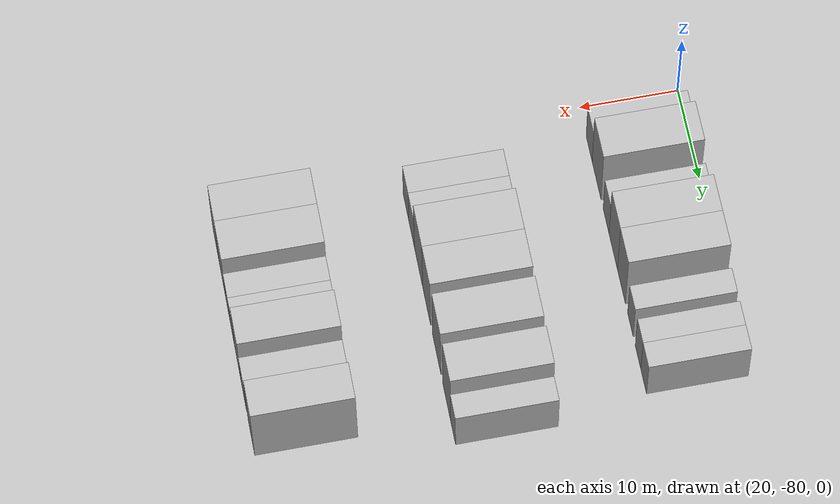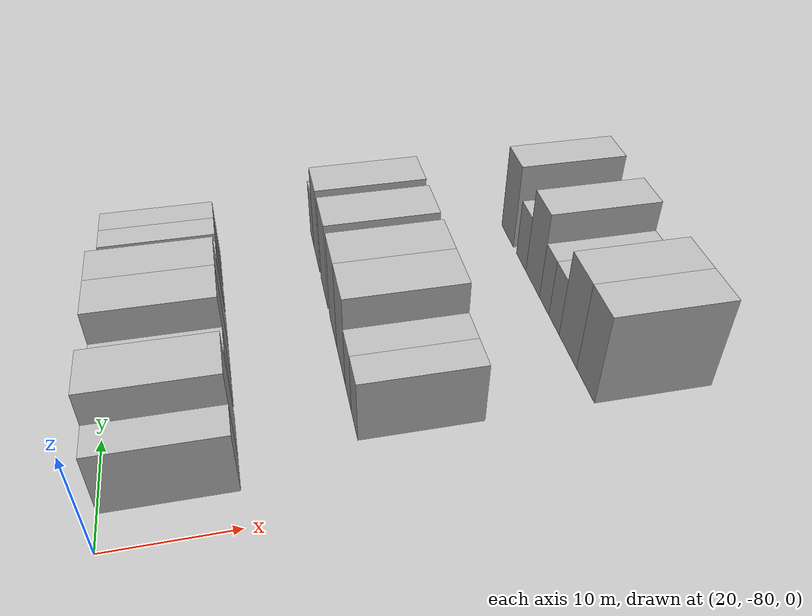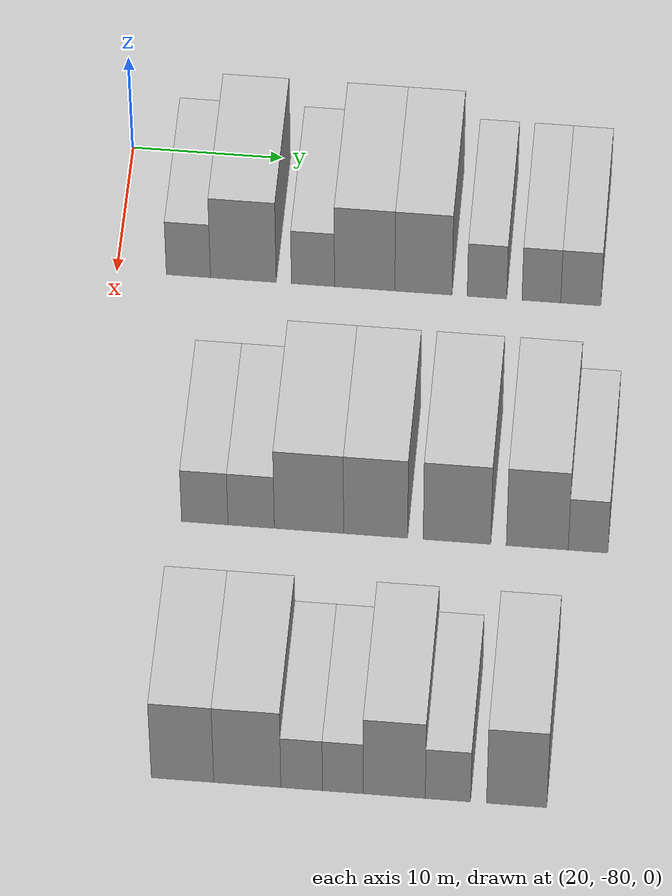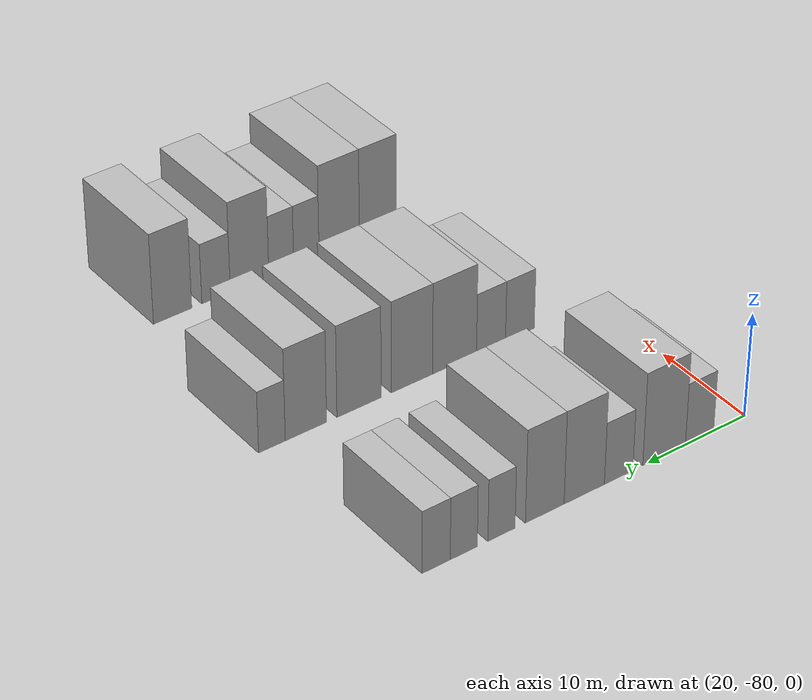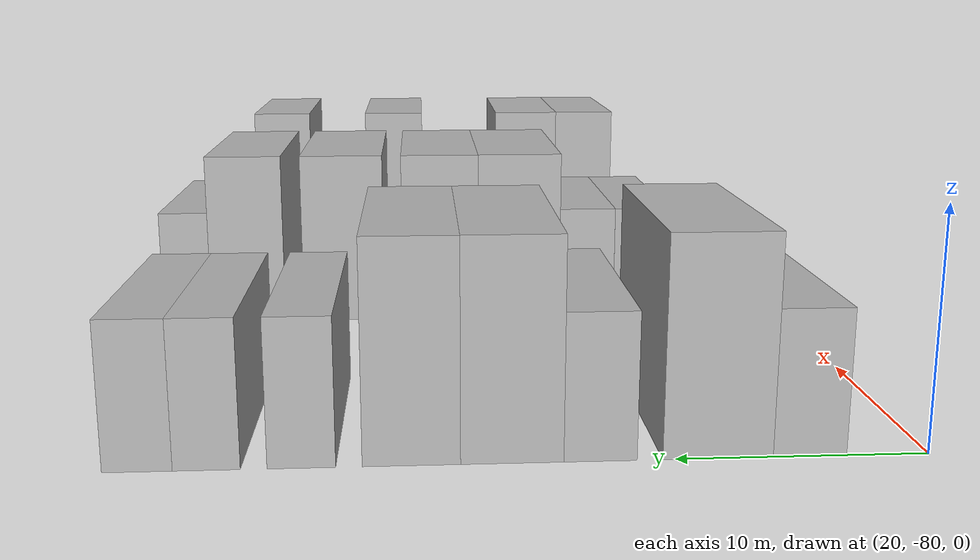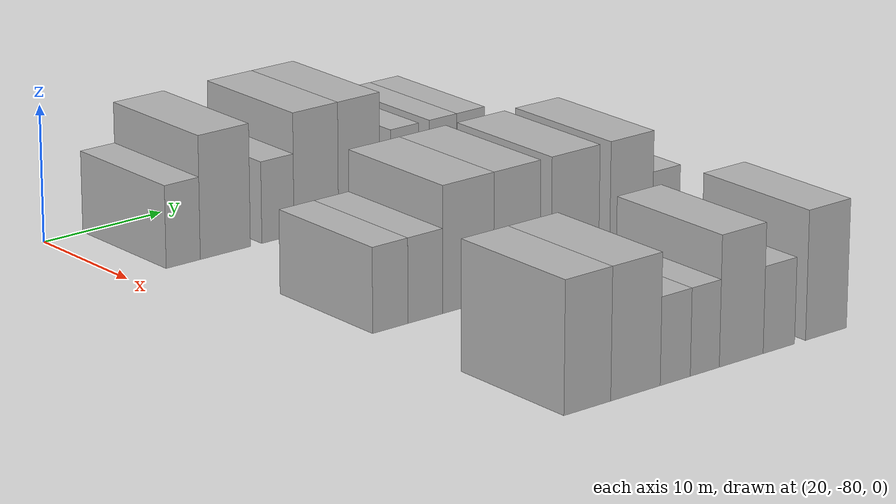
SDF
<sdf version="1.6">
 <world name="default">
  <model name="building_37">
   <static>1</static>
   <pose>25.0000 -75.2825 0 0.000000 0.000000 0.000000</pose>
   <link name="link">
    <pose>0 0 3.00 0 0 0</pose>
    <collision name="collision"><geometry><box><size>10.0000 2.9061 6.0000</size></box></geometry></collision>
    <visual name="visual">
     <cast_shadows>0</cast_shadows>
     <geometry><box><size>10.0000 2.9061 6.0000</size></box></geometry>
     <material>
      <script>
       <uri>model://HANNAS_wall/materials/scripts</uri>
       <uri>model://HANNAS_wall/materials/textures</uri>
       <name>vrc/HANNAS_wall</name>
      </script>
     </material>
    </visual>
   </link>
  </model>
  <model name="building_38">
   <static>1</static>
   <pose>25.0000 -71.6623 0 0.000000 0.000000 0.000000</pose>
   <link name="link">
    <pose>0 0 4.50 0 0 0</pose>
    <collision name="collision"><geometry><box><size>10.0000 4.3342 9.0000</size></box></geometry></collision>
    <visual name="visual">
     <cast_shadows>0</cast_shadows>
     <geometry><box><size>10.0000 4.3342 9.0000</size></box></geometry>
     <material>
      <script>
       <uri>model://HANNAS_wall/materials/scripts</uri>
       <uri>model://HANNAS_wall/materials/textures</uri>
       <name>vrc/HANNAS_wall</name>
      </script>
     </material>
    </visual>
   </link>
  </model>
  <model name="building_39">
   <static>1</static>
   <pose>25.0000 -67.0746 0 0.000000 0.000000 0.000000</pose>
   <link name="link">
    <pose>0 0 3.00 0 0 0</pose>
    <collision name="collision"><geometry><box><size>10.0000 2.8413 6.0000</size></box></geometry></collision>
    <visual name="visual">
     <cast_shadows>0</cast_shadows>
     <geometry><box><size>10.0000 2.8413 6.0000</size></box></geometry>
     <material>
      <script>
       <uri>model://HANNAS_wall/materials/scripts</uri>
       <uri>model://HANNAS_wall/materials/textures</uri>
       <name>vrc/HANNAS_wall</name>
      </script>
     </material>
    </visual>
   </link>
  </model>
  <model name="building_40">
   <static>1</static>
   <pose>25.0000 -63.6669 0 0.000000 0.000000 0.000000</pose>
   <link name="link">
    <pose>0 0 4.50 0 0 0</pose>
    <collision name="collision"><geometry><box><size>10.0000 3.9742 9.0000</size></box></geometry></collision>
    <visual name="visual">
     <cast_shadows>0</cast_shadows>
     <geometry><box><size>10.0000 3.9742 9.0000</size></box></geometry>
     <material>
      <script>
       <uri>model://HANNAS_wall/materials/scripts</uri>
       <uri>model://HANNAS_wall/materials/textures</uri>
       <name>vrc/HANNAS_wall</name>
      </script>
     </material>
    </visual>
   </link>
  </model>
  <model name="building_41">
   <static>1</static>
   <pose>25.0000 -59.8022 0 0.000000 0.000000 0.000000</pose>
   <link name="link">
    <pose>0 0 4.50 0 0 0</pose>
    <collision name="collision"><geometry><box><size>10.0000 3.7553 9.0000</size></box></geometry></collision>
    <visual name="visual">
     <cast_shadows>0</cast_shadows>
     <geometry><box><size>10.0000 3.7553 9.0000</size></box></geometry>
     <material>
      <script>
       <uri>model://HANNAS_wall/materials/scripts</uri>
       <uri>model://HANNAS_wall/materials/textures</uri>
       <name>vrc/HANNAS_wall</name>
      </script>
     </material>
    </visual>
   </link>
  </model>
  <model name="building_42">
   <static>1</static>
   <pose>25.0000 -55.6284 0 0.000000 0.000000 0.000000</pose>
   <link name="link">
    <pose>0 0 3.00 0 0 0</pose>
    <collision name="collision"><geometry><box><size>10.0000 2.5923 6.0000</size></box></geometry></collision>
    <visual name="visual">
     <cast_shadows>0</cast_shadows>
     <geometry><box><size>10.0000 2.5923 6.0000</size></box></geometry>
     <material>
      <script>
       <uri>model://HANNAS_wall/materials/scripts</uri>
       <uri>model://HANNAS_wall/materials/textures</uri>
       <name>vrc/HANNAS_wall</name>
      </script>
     </material>
    </visual>
   </link>
  </model>
  <model name="building_43">
   <static>1</static>
   <pose>25.0000 -52.0600 0 0.000000 0.000000 0.000000</pose>
   <link name="link">
    <pose>0 0 3.00 0 0 0</pose>
    <collision name="collision"><geometry><box><size>10.0000 2.5443 6.0000</size></box></geometry></collision>
    <visual name="visual">
     <cast_shadows>0</cast_shadows>
     <geometry><box><size>10.0000 2.5443 6.0000</size></box></geometry>
     <material>
      <script>
       <uri>model://HANNAS_wall/materials/scripts</uri>
       <uri>model://HANNAS_wall/materials/textures</uri>
       <name>vrc/HANNAS_wall</name>
      </script>
     </material>
    </visual>
   </link>
  </model>
  <model name="building_44">
   <static>1</static>
   <pose>25.0000 -49.4723 0 0.000000 0.000000 0.000000</pose>
   <link name="link">
    <pose>0 0 3.00 0 0 0</pose>
    <collision name="collision"><geometry><box><size>10.0000 2.6311 6.0000</size></box></geometry></collision>
    <visual name="visual">
     <cast_shadows>0</cast_shadows>
     <geometry><box><size>10.0000 2.6311 6.0000</size></box></geometry>
     <material>
      <script>
       <uri>model://HANNAS_wall/materials/scripts</uri>
       <uri>model://HANNAS_wall/materials/textures</uri>
       <name>vrc/HANNAS_wall</name>
      </script>
     </material>
    </visual>
   </link>
  </model>
  <model name="building_159">
   <static>1</static>
   <pose>44.0000 -72.2878 0 0.000000 0.000000 0.000000</pose>
   <link name="link">
    <pose>0 0 3.00 0 0 0</pose>
    <collision name="collision"><geometry><box><size>10.0000 2.9814 6.0000</size></box></geometry></collision>
    <visual name="visual">
     <cast_shadows>0</cast_shadows>
     <geometry><box><size>10.0000 2.9814 6.0000</size></box></geometry>
     <material>
      <script>
       <uri>model://HANNAS_wall/materials/scripts</uri>
       <uri>model://HANNAS_wall/materials/textures</uri>
       <name>vrc/HANNAS_wall</name>
      </script>
     </material>
    </visual>
   </link>
  </model>
  <model name="building_160">
   <static>1</static>
   <pose>44.0000 -69.3068 0 0.000000 0.000000 0.000000</pose>
   <link name="link">
    <pose>0 0 3.00 0 0 0</pose>
    <collision name="collision"><geometry><box><size>10.0000 2.9805 6.0000</size></box></geometry></collision>
    <visual name="visual">
     <cast_shadows>0</cast_shadows>
     <geometry><box><size>10.0000 2.9805 6.0000</size></box></geometry>
     <material>
      <script>
       <uri>model://HANNAS_wall/materials/scripts</uri>
       <uri>model://HANNAS_wall/materials/textures</uri>
       <name>vrc/HANNAS_wall</name>
      </script>
     </material>
    </visual>
   </link>
  </model>
  <model name="building_161">
   <static>1</static>
   <pose>44.0000 -65.5922 0 0.000000 0.000000 0.000000</pose>
   <link name="link">
    <pose>0 0 4.50 0 0 0</pose>
    <collision name="collision"><geometry><box><size>10.0000 4.4486 9.0000</size></box></geometry></collision>
    <visual name="visual">
     <cast_shadows>0</cast_shadows>
     <geometry><box><size>10.0000 4.4486 9.0000</size></box></geometry>
     <material>
      <script>
       <uri>model://HANNAS_wall/materials/scripts</uri>
       <uri>model://HANNAS_wall/materials/textures</uri>
       <name>vrc/HANNAS_wall</name>
      </script>
     </material>
    </visual>
   </link>
  </model>
  <model name="building_162">
   <static>1</static>
   <pose>44.0000 -61.3118 0 0.000000 0.000000 0.000000</pose>
   <link name="link">
    <pose>0 0 4.50 0 0 0</pose>
    <collision name="collision"><geometry><box><size>10.0000 4.1122 9.0000</size></box></geometry></collision>
    <visual name="visual">
     <cast_shadows>0</cast_shadows>
     <geometry><box><size>10.0000 4.1122 9.0000</size></box></geometry>
     <material>
      <script>
       <uri>model://HANNAS_wall/materials/scripts</uri>
       <uri>model://HANNAS_wall/materials/textures</uri>
       <name>vrc/HANNAS_wall</name>
      </script>
     </material>
    </visual>
   </link>
  </model>
  <model name="building_163">
   <static>1</static>
   <pose>44.0000 -56.0906 0 0.000000 0.000000 0.000000</pose>
   <link name="link">
    <pose>0 0 4.50 0 0 0</pose>
    <collision name="collision"><geometry><box><size>10.0000 4.3302 9.0000</size></box></geometry></collision>
    <visual name="visual">
     <cast_shadows>0</cast_shadows>
     <geometry><box><size>10.0000 4.3302 9.0000</size></box></geometry>
     <material>
      <script>
       <uri>model://HANNAS_wall/materials/scripts</uri>
       <uri>model://HANNAS_wall/materials/textures</uri>
       <name>vrc/HANNAS_wall</name>
      </script>
     </material>
    </visual>
   </link>
  </model>
  <model name="building_164">
   <static>1</static>
   <pose>44.0000 -50.9438 0 0.000000 0.000000 0.000000</pose>
   <link name="link">
    <pose>0 0 4.50 0 0 0</pose>
    <collision name="collision"><geometry><box><size>10.0000 3.9636 9.0000</size></box></geometry></collision>
    <visual name="visual">
     <cast_shadows>0</cast_shadows>
     <geometry><box><size>10.0000 3.9636 9.0000</size></box></geometry>
     <material>
      <script>
       <uri>model://HANNAS_wall/materials/scripts</uri>
       <uri>model://HANNAS_wall/materials/textures</uri>
       <name>vrc/HANNAS_wall</name>
      </script>
     </material>
    </visual>
   </link>
  </model>
  <model name="building_165">
   <static>1</static>
   <pose>44.0000 -47.6942 0 0.000000 0.000000 0.000000</pose>
   <link name="link">
    <pose>0 0 3.00 0 0 0</pose>
    <collision name="collision"><geometry><box><size>10.0000 2.5356 6.0000</size></box></geometry></collision>
    <visual name="visual">
     <cast_shadows>0</cast_shadows>
     <geometry><box><size>10.0000 2.5356 6.0000</size></box></geometry>
     <material>
      <script>
       <uri>model://HANNAS_wall/materials/scripts</uri>
       <uri>model://HANNAS_wall/materials/textures</uri>
       <name>vrc/HANNAS_wall</name>
      </script>
     </material>
    </visual>
   </link>
  </model>
  <model name="building_278">
   <static>1</static>
   <pose>63.0000 -71.7689 0 0.000000 0.000000 0.000000</pose>
   <link name="link">
    <pose>0 0 4.50 0 0 0</pose>
    <collision name="collision"><geometry><box><size>10.0000 3.9138 9.0000</size></box></geometry></collision>
    <visual name="visual">
     <cast_shadows>0</cast_shadows>
     <geometry><box><size>10.0000 3.9138 9.0000</size></box></geometry>
     <material>
      <script>
       <uri>model://HANNAS_wall/materials/scripts</uri>
       <uri>model://HANNAS_wall/materials/textures</uri>
       <name>vrc/HANNAS_wall</name>
      </script>
     </material>
    </visual>
   </link>
  </model>
  <model name="building_279">
   <static>1</static>
   <pose>63.0000 -67.7076 0 0.000000 0.000000 0.000000</pose>
   <link name="link">
    <pose>0 0 4.50 0 0 0</pose>
    <collision name="collision"><geometry><box><size>10.0000 4.2088 9.0000</size></box></geometry></collision>
    <visual name="visual">
     <cast_shadows>0</cast_shadows>
     <geometry><box><size>10.0000 4.2088 9.0000</size></box></geometry>
     <material>
      <script>
       <uri>model://HANNAS_wall/materials/scripts</uri>
       <uri>model://HANNAS_wall/materials/textures</uri>
       <name>vrc/HANNAS_wall</name>
      </script>
     </material>
    </visual>
   </link>
  </model>
  <model name="building_280">
   <static>1</static>
   <pose>63.0000 -64.3007 0 0.000000 0.000000 0.000000</pose>
   <link name="link">
    <pose>0 0 3.00 0 0 0</pose>
    <collision name="collision"><geometry><box><size>10.0000 2.6050 6.0000</size></box></geometry></collision>
    <visual name="visual">
     <cast_shadows>0</cast_shadows>
     <geometry><box><size>10.0000 2.6050 6.0000</size></box></geometry>
     <material>
      <script>
       <uri>model://HANNAS_wall/materials/scripts</uri>
       <uri>model://HANNAS_wall/materials/textures</uri>
       <name>vrc/HANNAS_wall</name>
      </script>
     </material>
    </visual>
   </link>
  </model>
  <model name="building_281">
   <static>1</static>
   <pose>63.0000 -61.7284 0 0.000000 0.000000 0.000000</pose>
   <link name="link">
    <pose>0 0 3.00 0 0 0</pose>
    <collision name="collision"><geometry><box><size>10.0000 2.5396 6.0000</size></box></geometry></collision>
    <visual name="visual">
     <cast_shadows>0</cast_shadows>
     <geometry><box><size>10.0000 2.5396 6.0000</size></box></geometry>
     <material>
      <script>
       <uri>model://HANNAS_wall/materials/scripts</uri>
       <uri>model://HANNAS_wall/materials/textures</uri>
       <name>vrc/HANNAS_wall</name>
      </script>
     </material>
    </visual>
   </link>
  </model>
  <model name="building_282">
   <static>1</static>
   <pose>63.0000 -58.5115 0 0.000000 0.000000 0.000000</pose>
   <link name="link">
    <pose>0 0 4.50 0 0 0</pose>
    <collision name="collision"><geometry><box><size>10.0000 3.8941 9.0000</size></box></geometry></collision>
    <visual name="visual">
     <cast_shadows>0</cast_shadows>
     <geometry><box><size>10.0000 3.8941 9.0000</size></box></geometry>
     <material>
      <script>
       <uri>model://HANNAS_wall/materials/scripts</uri>
       <uri>model://HANNAS_wall/materials/textures</uri>
       <name>vrc/HANNAS_wall</name>
      </script>
     </material>
    </visual>
   </link>
  </model>
  <model name="building_283">
   <static>1</static>
   <pose>63.0000 -55.1481 0 0.000000 0.000000 0.000000</pose>
   <link name="link">
    <pose>0 0 3.00 0 0 0</pose>
    <collision name="collision"><geometry><box><size>10.0000 2.8327 6.0000</size></box></geometry></collision>
    <visual name="visual">
     <cast_shadows>0</cast_shadows>
     <geometry><box><size>10.0000 2.8327 6.0000</size></box></geometry>
     <material>
      <script>
       <uri>model://HANNAS_wall/materials/scripts</uri>
       <uri>model://HANNAS_wall/materials/textures</uri>
       <name>vrc/HANNAS_wall</name>
      </script>
     </material>
    </visual>
   </link>
  </model>
  <model name="building_284">
   <static>1</static>
   <pose>63.0000 -50.8514 0 0.000000 0.000000 0.000000</pose>
   <link name="link">
    <pose>0 0 4.50 0 0 0</pose>
    <collision name="collision"><geometry><box><size>10.0000 3.7607 9.0000</size></box></geometry></collision>
    <visual name="visual">
     <cast_shadows>0</cast_shadows>
     <geometry><box><size>10.0000 3.7607 9.0000</size></box></geometry>
     <material>
      <script>
       <uri>model://HANNAS_wall/materials/scripts</uri>
       <uri>model://HANNAS_wall/materials/textures</uri>
       <name>vrc/HANNAS_wall</name>
      </script>
     </material>
    </visual>
   </link>
  </model>
 </world>
</sdf>
